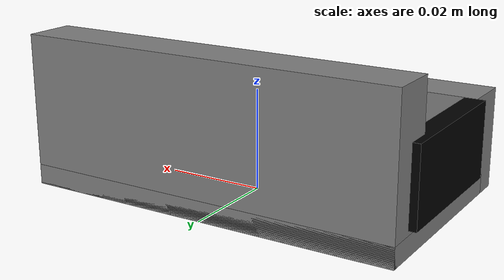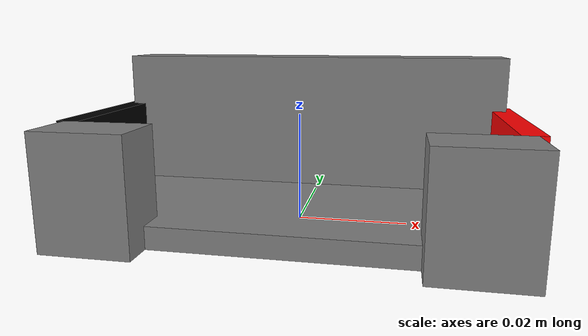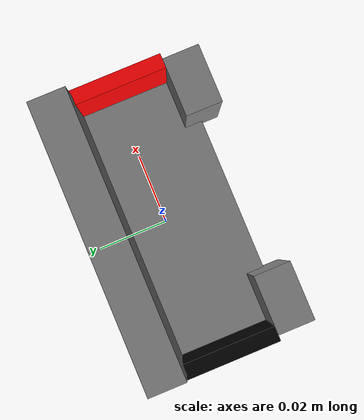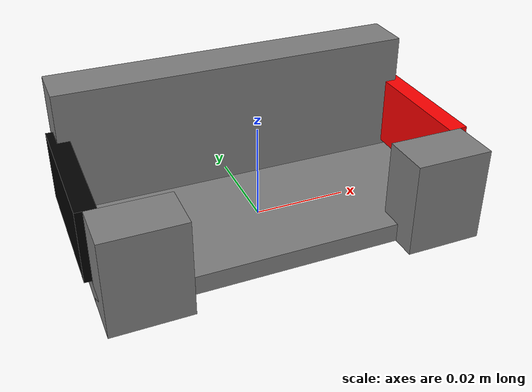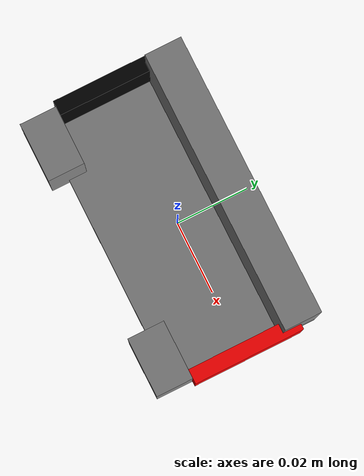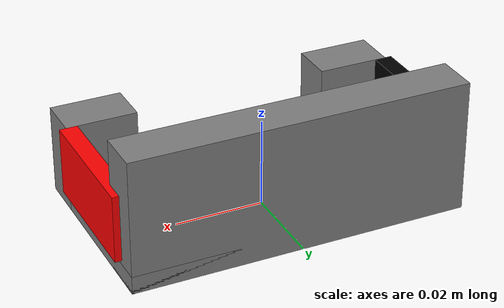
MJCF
<mujoco model="C_charger">
    <worldbody>
        <body name="charger_C" pos="0 0 0">

            <!-- Back wall -->
            <geom name="back_wall" type="box" pos="0 0.015 0.015" size="0.038 0.005 0.015" rgba="0.5 0.5 0.5 1" density="1200" friction="1 0.005 0.0001" condim="4"/>

            <!-- Bottom right -->
            <geom name="bottom" type="box" pos="0 0 0.002" size="0.038 0.020 0.002" rgba=" 0.5 0.5 0.5 1" density="1200" friction="1 0.005 0.0001" condim="4"/>

            <!-- Right wall -->
            <geom name="right_wall" type="box" pos="0.0375 0 0.0125" size="0.002 0.015 0.0075" rgba="1 0 0 1" density="1200" friction="1 0.005 0.0001" condim="4"/>

            <!-- Right hook -->
            <geom name="right_hook" type="box" pos="0.03 -0.02 0.01" size="0.008 0.005 0.01" rgba="0.5 0.5 0.5 1" density="1200" friction="1 0.005 0.0001" condim="4"/>

            <!-- Bottom left -->

            <!-- Left wall -->
            <geom name="left_wall" type="box" pos="-0.0375 0 0.0125" size="0.002 0.015 0.0075" rgba="0 0 0 1" density="1200" friction="1 0.005 0.0001" condim="4"/>

            <!-- Left hook -->
            <geom name="left_hook" type="box" pos="-0.03 -0.020 0.01" size="0.008 0.005 0.01" rgba="0.5 0.5 0.5 1" density="1200" friction="1 0.005 0.0001" condim="4"/>

            <!-- Make it one solid object -->
        </body>
    </worldbody>
</mujoco>
